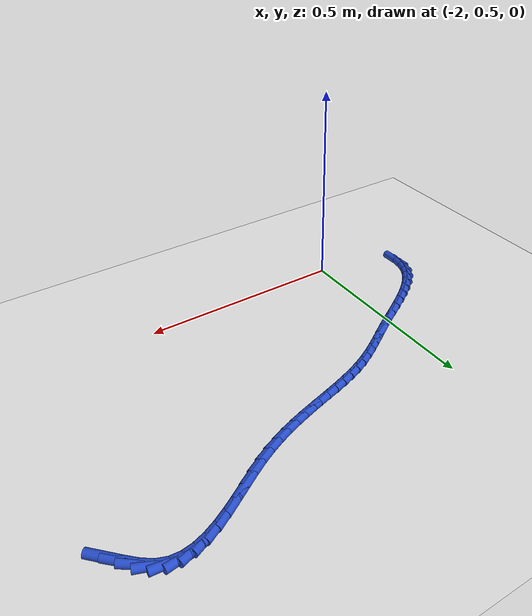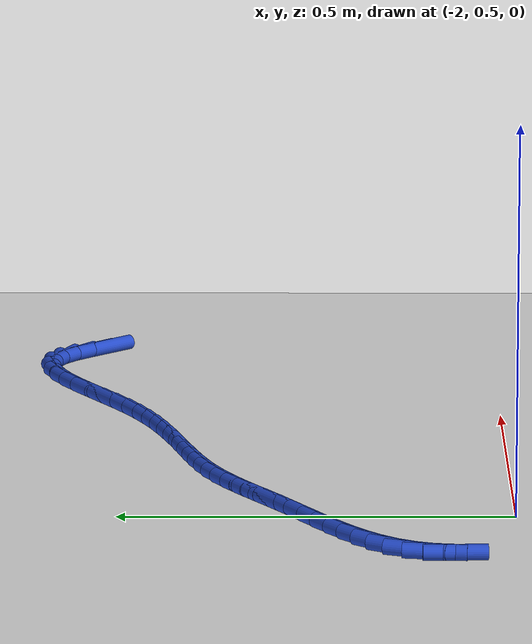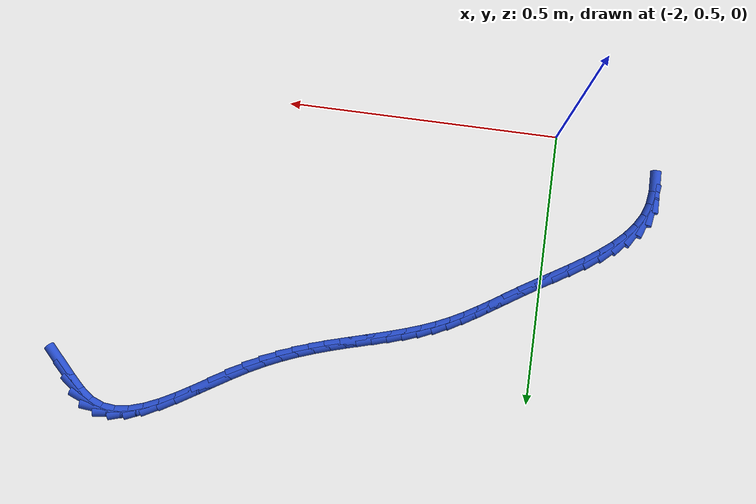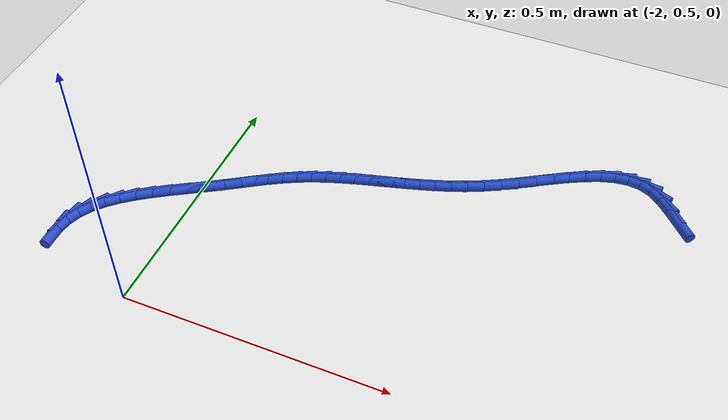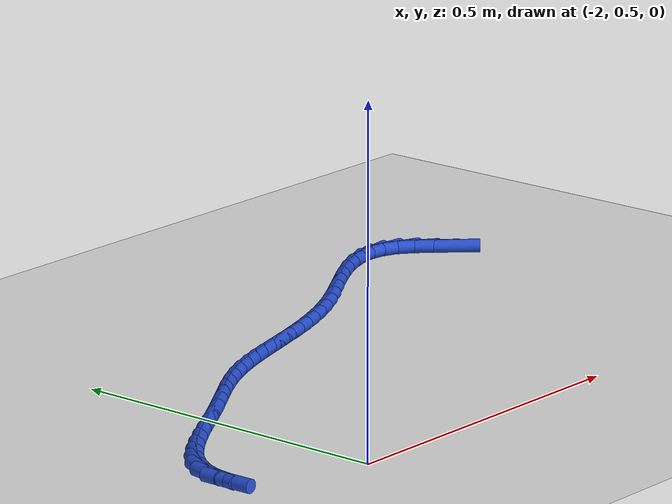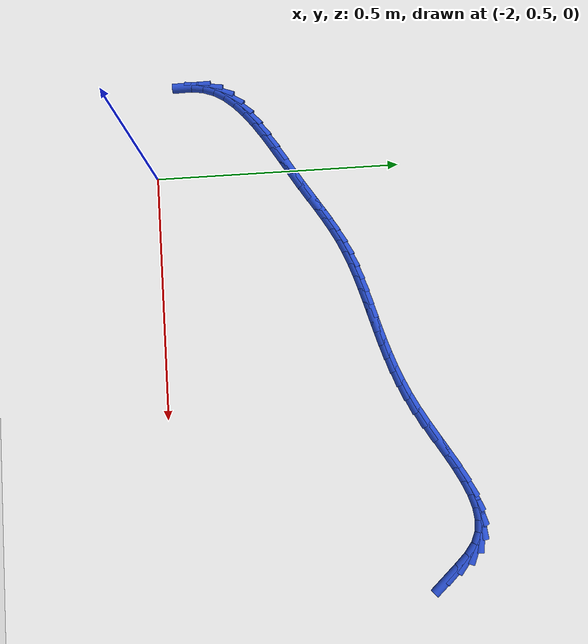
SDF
<sdf version="1.6">
 <world name="default">
  <model name="ground_plane">
   <static>1</static>
   <link name="link">
    <collision name="collision">
     <geometry><plane><normal>0 0 1</normal><size>100 100</size></plane></geometry>
     <surface><friction><ode><mu>100</mu><mu2>50</mu2></ode></friction></surface>
    </collision>
    <visual name="visual">
     <cast_shadows>0</cast_shadows>
     <geometry><plane><normal>0 0 1</normal><size>100 100</size></plane></geometry>
     <material>
      <script><uri>file://media/materials/scripts/gazebo.material</uri><name>Gazebo/WhiteGlow</name></script>
     </material>
    </visual>
   </link>
  </model>
  <model name="line">
   <link name="link_61">
    <pose>-1.1542749857297914 1.0375028646965918 0.01 0 1.57 -0.826155558056817</pose>
    <collision name="collision">
     <geometry><cylinder><radius>0.01</radius><length>0.08</length></cylinder></geometry>
    </collision>
    <visual name="visual">
     <material>
      <script><name>Gazebo/Blue</name><uri>file://media/materials/scripts/gazebo.material</uri></script>
     </material>
     <geometry><cylinder><radius>0.01</radius><length>0.08</length></cylinder></geometry>
    </visual>
   </link>
   <link name="link_62">
    <pose>-1.1750645763859224 1.0600601395720355 0.01 0 1.57 -0.7933945270055505</pose>
    <collision name="collision">
     <geometry><cylinder><radius>0.01</radius><length>0.08</length></cylinder></geometry>
    </collision>
    <visual name="visual">
     <material>
      <script><name>Gazebo/Blue</name><uri>file://media/materials/scripts/gazebo.material</uri></script>
     </material>
     <geometry><cylinder><radius>0.01</radius><length>0.08</length></cylinder></geometry>
    </visual>
   </link>
   <link name="link_63">
    <pose>-1.1957799340686757 1.0811094700052497 0.01 0 1.57 -0.6518290344011914</pose>
    <collision name="collision">
     <geometry><cylinder><radius>0.01</radius><length>0.08</length></cylinder></geometry>
    </collision>
    <visual name="visual">
     <material>
      <script><name>Gazebo/Blue</name><uri>file://media/materials/scripts/gazebo.material</uri></script>
     </material>
     <geometry><cylinder><radius>0.01</radius><length>0.08</length></cylinder></geometry>
    </visual>
   </link>
   <link name="link_64">
    <pose>-1.2172710076090587 1.0975091894607254 0.01 0 1.57 -0.384783047442654</pose>
    <collision name="collision">
     <geometry><cylinder><radius>0.01</radius><length>0.08</length></cylinder></geometry>
    </collision>
    <visual name="visual">
     <material>
      <script><name>Gazebo/Blue</name><uri>file://media/materials/scripts/gazebo.material</uri></script>
     </material>
     <geometry><cylinder><radius>0.01</radius><length>0.08</length></cylinder></geometry>
    </visual>
   </link>
   <link name="link_65">
    <pose>-1.2402166386882192 1.1068014694945498 0.01 0 1.57 -0.1009094022104587</pose>
    <collision name="collision">
     <geometry><cylinder><radius>0.01</radius><length>0.08</length></cylinder></geometry>
    </collision>
    <visual name="visual">
     <material>
      <script><name>Gazebo/Blue</name><uri>file://media/materials/scripts/gazebo.material</uri></script>
     </material>
     <geometry><cylinder><radius>0.01</radius><length>0.08</length></cylinder></geometry>
    </visual>
   </link>
   <link name="link_66">
    <pose>-1.264609368722216 1.1092713142324966 0.01 0 1.57 0.1309670021226246</pose>
    <collision name="collision">
     <geometry><cylinder><radius>0.01</radius><length>0.08</length></cylinder></geometry>
    </collision>
    <visual name="visual">
     <material>
      <script><name>Gazebo/Blue</name><uri>file://media/materials/scripts/gazebo.material</uri></script>
     </material>
     <geometry><cylinder><radius>0.01</radius><length>0.08</length></cylinder></geometry>
    </visual>
   </link>
   <link name="link_67">
    <pose>-1.2902696948655548 1.1058913111046536 0.01 0 1.57 0.2994201154492021</pose>
    <collision name="collision">
     <geometry><cylinder><radius>0.01</radius><length>0.08</length></cylinder></geometry>
    </collision>
    <visual name="visual">
     <material>
      <script><name>Gazebo/Blue</name><uri>file://media/materials/scripts/gazebo.material</uri></script>
     </material>
     <geometry><cylinder><radius>0.01</radius><length>0.08</length></cylinder></geometry>
    </visual>
   </link>
   <link name="link_68">
    <pose>-1.3170181142726092 1.0976340475416253 0.01 0 1.57 0.414290330152264</pose>
    <collision name="collision">
     <geometry><cylinder><radius>0.01</radius><length>0.08</length></cylinder></geometry>
    </collision>
    <visual name="visual">
     <material>
      <script><name>Gazebo/Blue</name><uri>file://media/materials/scripts/gazebo.material</uri></script>
     </material>
     <geometry><cylinder><radius>0.01</radius><length>0.08</length></cylinder></geometry>
    </visual>
   </link>
   <link name="link_69">
    <pose>-1.344675124097755 1.0854721109740177 0.01 0 1.57 0.48871598583481846</pose>
    <collision name="collision">
     <geometry><cylinder><radius>0.01</radius><length>0.08</length></cylinder></geometry>
    </collision>
    <visual name="visual">
     <material>
      <script><name>Gazebo/Blue</name><uri>file://media/materials/scripts/gazebo.material</uri></script>
     </material>
     <geometry><cylinder><radius>0.01</radius><length>0.08</length></cylinder></geometry>
    </visual>
   </link>
   <link name="link_70">
    <pose>-1.3730612214953668 1.0703780888324346 0.01 0 1.57 0.5325588930081392</pose>
    <collision name="collision">
     <geometry><cylinder><radius>0.01</radius><length>0.08</length></cylinder></geometry>
    </collision>
    <visual name="visual">
     <material>
      <script><name>Gazebo/Blue</name><uri>file://media/materials/scripts/gazebo.material</uri></script>
     </material>
     <geometry><cylinder><radius>0.01</radius><length>0.08</length></cylinder></geometry>
    </visual>
   </link>
   <link name="link_71">
    <pose>-1.401996903619819 1.0533245685474812 0.01 0 1.57 0.5518063078084224</pose>
    <collision name="collision">
     <geometry><cylinder><radius>0.01</radius><length>0.08</length></cylinder></geometry>
    </collision>
    <visual name="visual">
     <material>
      <script><name>Gazebo/Blue</name><uri>file://media/materials/scripts/gazebo.material</uri></script>
     </material>
     <geometry><cylinder><radius>0.01</radius><length>0.08</length></cylinder></geometry>
    </visual>
   </link>
   <link name="link_72">
    <pose>-1.4313026676254874 1.0352841375497632 0.01 0 1.57 0.549270138854012</pose>
    <collision name="collision">
     <geometry><cylinder><radius>0.01</radius><length>0.08</length></cylinder></geometry>
    </collision>
    <visual name="visual">
     <material>
      <script><name>Gazebo/Blue</name><uri>file://media/materials/scripts/gazebo.material</uri></script>
     </material>
     <geometry><cylinder><radius>0.01</radius><length>0.08</length></cylinder></geometry>
    </visual>
   </link>
   <link name="link_73">
    <pose>-1.4607990106667466 1.017229383269885 0.01 0 1.57 0.5251319545697665</pose>
    <collision name="collision">
     <geometry><cylinder><radius>0.01</radius><length>0.08</length></cylinder></geometry>
    </collision>
    <visual name="visual">
     <material>
      <script><name>Gazebo/Blue</name><uri>file://media/materials/scripts/gazebo.material</uri></script>
     </material>
     <geometry><cylinder><radius>0.01</radius><length>0.08</length></cylinder></geometry>
    </visual>
   </link>
   <link name="link_74">
    <pose>-1.4903064298979716 1.0001328931384517 0.01 0 1.57 0.4790051412825717</pose>
    <collision name="collision">
     <geometry><cylinder><radius>0.01</radius><length>0.08</length></cylinder></geometry>
    </collision>
    <visual name="visual">
     <material>
      <script><name>Gazebo/Blue</name><uri>file://media/materials/scripts/gazebo.material</uri></script>
     </material>
     <geometry><cylinder><radius>0.01</radius><length>0.08</length></cylinder></geometry>
    </visual>
   </link>
   <link name="link_75">
    <pose>-1.519654742285898 0.9848909352190839 0.01 0 1.57 0.4271644738788694</pose>
    <collision name="collision">
     <geometry><cylinder><radius>0.01</radius><length>0.08</length></cylinder></geometry>
    </collision>
    <visual name="visual">
     <material>
      <script><name>Gazebo/Blue</name><uri>file://media/materials/scripts/gazebo.material</uri></script>
     </material>
     <geometry><cylinder><radius>0.01</radius><length>0.08</length></cylinder></geometry>
    </visual>
   </link>
   <link name="link_76">
    <pose>-1.5487666194202543 0.9716393968107695 0.01 0 1.57 0.3811349308430321</pose>
    <collision name="collision">
     <geometry><cylinder><radius>0.01</radius><length>0.08</length></cylinder></geometry>
    </collision>
    <visual name="visual">
     <material>
      <script><name>Gazebo/Blue</name><uri>file://media/materials/scripts/gazebo.material</uri></script>
     </material>
     <geometry><cylinder><radius>0.01</radius><length>0.08</length></cylinder></geometry>
    </visual>
   </link>
   <link name="link_77">
    <pose>-1.5776180206786379 0.960077794813522 0.01 0 1.57 0.3422366706057446</pose>
    <collision name="collision">
     <geometry><cylinder><radius>0.01</radius><length>0.08</length></cylinder></geometry>
    </collision>
    <visual name="visual">
     <material>
      <script><name>Gazebo/Blue</name><uri>file://media/materials/scripts/gazebo.material</uri></script>
     </material>
     <geometry><cylinder><radius>0.01</radius><length>0.08</length></cylinder></geometry>
    </visual>
   </link>
   <link name="link_78">
    <pose>-1.6061855385334223 0.9499004617533731 0.01 0 1.57 0.3114820809907761</pose>
    <collision name="collision">
     <geometry><cylinder><radius>0.01</radius><length>0.08</length></cylinder></geometry>
    </collision>
    <visual name="visual">
     <material>
      <script><name>Gazebo/Blue</name><uri>file://media/materials/scripts/gazebo.material</uri></script>
     </material>
     <geometry><cylinder><radius>0.01</radius><length>0.08</length></cylinder></geometry>
    </visual>
   </link>
   <link name="link_79">
    <pose>-1.6344457654569824 0.9408017301563554 0.01 0 1.57 0.28971293504846174</pose>
    <collision name="collision">
     <geometry><cylinder><radius>0.01</radius><length>0.08</length></cylinder></geometry>
    </collision>
    <visual name="visual">
     <material>
      <script><name>Gazebo/Blue</name><uri>file://media/materials/scripts/gazebo.material</uri></script>
     </material>
     <geometry><cylinder><radius>0.01</radius><length>0.08</length></cylinder></geometry>
    </visual>
   </link>
   <link name="link_80">
    <pose>-1.6623752939216925 0.932475932548501 0.01 0 1.57 0.2776235840182263</pose>
    <collision name="collision">
     <geometry><cylinder><radius>0.01</radius><length>0.08</length></cylinder></geometry>
    </collision>
    <visual name="visual">
     <material>
      <script><name>Gazebo/Blue</name><uri>file://media/materials/scripts/gazebo.material</uri></script>
     </material>
     <geometry><cylinder><radius>0.01</radius><length>0.08</length></cylinder></geometry>
    </visual>
   </link>
   <link name="link_81">
    <pose>-1.689950716399925 0.924617401455841 0.01 0 1.57 0.2757858363685409</pose>
    <collision name="collision">
     <geometry><cylinder><radius>0.01</radius><length>0.08</length></cylinder></geometry>
    </collision>
    <visual name="visual">
     <material>
      <script><name>Gazebo/Blue</name><uri>file://media/materials/scripts/gazebo.material</uri></script>
     </material>
     <geometry><cylinder><radius>0.01</radius><length>0.08</length></cylinder></geometry>
    </visual>
   </link>
   <link name="link_82">
    <pose>-1.7171486253640569 0.9169204694044093 0.01 0 1.57 0.28466099066515427</pose>
    <collision name="collision">
     <geometry><cylinder><radius>0.01</radius><length>0.08</length></cylinder></geometry>
    </collision>
    <visual name="visual">
     <material>
      <script><name>Gazebo/Blue</name><uri>file://media/materials/scripts/gazebo.material</uri></script>
     </material>
     <geometry><cylinder><radius>0.01</radius><length>0.08</length></cylinder></geometry>
    </visual>
   </link>
   <link name="link_83">
    <pose>-1.7439456132864601 0.9090794689202366 0.01 0 1.57 0.3045863295543438</pose>
    <collision name="collision">
     <geometry><cylinder><radius>0.01</radius><length>0.08</length></cylinder></geometry>
    </collision>
    <visual name="visual">
     <material>
      <script><name>Gazebo/Blue</name><uri>file://media/materials/scripts/gazebo.material</uri></script>
     </material>
     <geometry><cylinder><radius>0.01</radius><length>0.08</length></cylinder></geometry>
    </visual>
   </link>
   <link name="link_84">
    <pose>-1.77031827263951 0.9007887325293558 0.01 0 1.57 0.33572664670906766</pose>
    <collision name="collision">
     <geometry><cylinder><radius>0.01</radius><length>0.08</length></cylinder></geometry>
    </collision>
    <visual name="visual">
     <material>
      <script><name>Gazebo/Blue</name><uri>file://media/materials/scripts/gazebo.material</uri></script>
     </material>
     <geometry><cylinder><radius>0.01</radius><length>0.08</length></cylinder></geometry>
    </visual>
   </link>
   <link name="link_85">
    <pose>-1.79624319589558 0.8917425927577985 0.01 0 1.57 0.3779874119327694</pose>
    <collision name="collision">
     <geometry><cylinder><radius>0.01</radius><length>0.08</length></cylinder></geometry>
    </collision>
    <visual name="visual">
     <material>
      <script><name>Gazebo/Blue</name><uri>file://media/materials/scripts/gazebo.material</uri></script>
     </material>
     <geometry><cylinder><radius>0.01</radius><length>0.08</length></cylinder></geometry>
    </visual>
   </link>
   <link name="link_86">
    <pose>-1.821696975527045 0.8816353821315972 0.01 0 1.57 0.43088917504239604</pose>
    <collision name="collision">
     <geometry><cylinder><radius>0.01</radius><length>0.08</length></cylinder></geometry>
    </collision>
    <visual name="visual">
     <material>
      <script><name>Gazebo/Blue</name><uri>file://media/materials/scripts/gazebo.material</uri></script>
     </material>
     <geometry><cylinder><radius>0.01</radius><length>0.08</length></cylinder></geometry>
    </visual>
   </link>
   <link name="link_87">
    <pose>-1.8466563093227837 0.8701616347673549 0.01 0 1.57 0.48766267648569245</pose>
    <collision name="collision">
     <geometry><cylinder><radius>0.01</radius><length>0.08</length></cylinder></geometry>
    </collision>
    <visual name="visual">
     <material>
      <script><name>Gazebo/Blue</name><uri>file://media/materials/scripts/gazebo.material</uri></script>
     </material>
     <geometry><cylinder><radius>0.01</radius><length>0.08</length></cylinder></geometry>
    </visual>
   </link>
   <link name="link_88">
    <pose>-1.8711724237445515 0.8571585431206735 0.01 0 1.57 0.5314498606835333</pose>
    <collision name="collision">
     <geometry><cylinder><radius>0.01</radius><length>0.08</length></cylinder></geometry>
    </collision>
    <visual name="visual">
     <material>
      <script><name>Gazebo/Blue</name><uri>file://media/materials/scripts/gazebo.material</uri></script>
     </material>
     <geometry><cylinder><radius>0.01</radius><length>0.08</length></cylinder></geometry>
    </visual>
   </link>
   <link name="link_89">
    <pose>-1.8955017750257983 0.842856138231472 0.01 0 1.57 0.559580495318021</pose>
    <collision name="collision">
     <geometry><cylinder><radius>0.01</radius><length>0.08</length></cylinder></geometry>
    </collision>
    <visual name="visual">
     <material>
      <script><name>Gazebo/Blue</name><uri>file://media/materials/scripts/gazebo.material</uri></script>
     </material>
     <geometry><cylinder><radius>0.01</radius><length>0.08</length></cylinder></geometry>
    </visual>
   </link>
   <link name="link_90">
    <pose>-1.9199358409953335 0.827551487388006 0.01 0 1.57 0.5726904796237602</pose>
    <collision name="collision">
     <geometry><cylinder><radius>0.01</radius><length>0.08</length></cylinder></geometry>
    </collision>
    <visual name="visual">
     <material>
      <script><name>Gazebo/Blue</name><uri>file://media/materials/scripts/gazebo.material</uri></script>
     </material>
     <geometry><cylinder><radius>0.01</radius><length>0.08</length></cylinder></geometry>
    </visual>
   </link>
   <link name="link_91">
    <pose>-1.9447660994819662 0.8115416578785309 0.01 0 1.57 0.5717133377183888</pose>
    <collision name="collision">
     <geometry><cylinder><radius>0.01</radius><length>0.08</length></cylinder></geometry>
    </collision>
    <visual name="visual">
     <material>
      <script><name>Gazebo/Blue</name><uri>file://media/materials/scripts/gazebo.material</uri></script>
     </material>
     <geometry><cylinder><radius>0.01</radius><length>0.08</length></cylinder></geometry>
    </visual>
   </link>
   <link name="link_92">
    <pose>-1.9702840283145078 0.7951237169913037 0.01 0 1.57 0.5581137839787977</pose>
    <collision name="collision">
     <geometry><cylinder><radius>0.01</radius><length>0.08</length></cylinder></geometry>
    </collision>
    <visual name="visual">
     <material>
      <script><name>Gazebo/Blue</name><uri>file://media/materials/scripts/gazebo.material</uri></script>
     </material>
     <geometry><cylinder><radius>0.01</radius><length>0.08</length></cylinder></geometry>
    </visual>
   </link>
   <link name="link_93">
    <pose>-1.9967685890983662 0.778588743242971 0.01 0 1.57 0.5455108097210468</pose>
    <collision name="collision">
     <geometry><cylinder><radius>0.01</radius><length>0.08</length></cylinder></geometry>
    </collision>
    <visual name="visual">
     <material>
      <script><name>Gazebo/Blue</name><uri>file://media/materials/scripts/gazebo.material</uri></script>
     </material>
     <geometry><cylinder><radius>0.01</radius><length>0.08</length></cylinder></geometry>
    </visual>
   </link>
   <link name="link_94">
    <pose>-2.0240659520287942 0.7620207328038051 0.01 0 1.57 0.5489027302673656</pose>
    <collision name="collision">
     <geometry><cylinder><radius>0.01</radius><length>0.08</length></cylinder></geometry>
    </collision>
    <visual name="visual">
     <material>
      <script><name>Gazebo/Blue</name><uri>file://media/materials/scripts/gazebo.material</uri></script>
     </material>
     <geometry><cylinder><radius>0.01</radius><length>0.08</length></cylinder></geometry>
    </visual>
   </link>
   <link name="link_95">
    <pose>-2.051489347307515 0.7452486803312309 0.01 0 1.57 0.5690938430391009</pose>
    <collision name="collision">
     <geometry><cylinder><radius>0.01</radius><length>0.08</length></cylinder></geometry>
    </collision>
    <visual name="visual">
     <material>
      <script><name>Gazebo/Blue</name><uri>file://media/materials/scripts/gazebo.material</uri></script>
     </material>
     <geometry><cylinder><radius>0.01</radius><length>0.08</length></cylinder></geometry>
    </visual>
   </link>
   <link name="link_96">
    <pose>-2.0783191867549515 0.728085877519897 0.01 0 1.57 0.6075250859256283</pose>
    <collision name="collision">
     <geometry><cylinder><radius>0.01</radius><length>0.08</length></cylinder></geometry>
    </collision>
    <visual name="visual">
     <material>
      <script><name>Gazebo/Blue</name><uri>file://media/materials/scripts/gazebo.material</uri></script>
     </material>
     <geometry><cylinder><radius>0.01</radius><length>0.08</length></cylinder></geometry>
    </visual>
   </link>
   <link name="link_97">
    <pose>-2.1038358821915297 0.7103456160644517 0.01 0 1.57 0.6673563647921416</pose>
    <collision name="collision">
     <geometry><cylinder><radius>0.01</radius><length>0.08</length></cylinder></geometry>
    </collision>
    <visual name="visual">
     <material>
      <script><name>Gazebo/Blue</name><uri>file://media/materials/scripts/gazebo.material</uri></script>
     </material>
     <geometry><cylinder><radius>0.01</radius><length>0.08</length></cylinder></geometry>
    </visual>
   </link>
   <link name="link_98">
    <pose>-2.127319845437674 0.691841187659544 0.01 0 1.57 0.7536487910772218</pose>
    <collision name="collision">
     <geometry><cylinder><radius>0.01</radius><length>0.08</length></cylinder></geometry>
    </collision>
    <visual name="visual">
     <material>
      <script><name>Gazebo/Blue</name><uri>file://media/materials/scripts/gazebo.material</uri></script>
     </material>
     <geometry><cylinder><radius>0.01</radius><length>0.08</length></cylinder></geometry>
    </visual>
   </link>
   <link name="link_99">
    <pose>-2.148051488313808 0.6723858839998226 0.01 0 1.57 0.8732276893597346</pose>
    <collision name="collision">
     <geometry><cylinder><radius>0.01</radius><length>0.08</length></cylinder></geometry>
    </collision>
    <visual name="visual">
     <material>
      <script><name>Gazebo/Blue</name><uri>file://media/materials/scripts/gazebo.material</uri></script>
     </material>
     <geometry><cylinder><radius>0.01</radius><length>0.08</length></cylinder></geometry>
    </visual>
   </link>
   <link name="link_100">
    <pose>-2.165311222640357 0.6517929967799359 0.01 0 1.57 1.0331347171856156</pose>
    <collision name="collision">
     <geometry><cylinder><radius>0.01</radius><length>0.08</length></cylinder></geometry>
    </collision>
    <visual name="visual">
     <material>
      <script><name>Gazebo/Blue</name><uri>file://media/materials/scripts/gazebo.material</uri></script>
     </material>
     <geometry><cylinder><radius>0.01</radius><length>0.08</length></cylinder></geometry>
    </visual>
   </link>
   <link name="link_101">
    <pose>-2.1783794602377458 0.6298758176945327 0.01 0 1.57 1.2335352507810513</pose>
    <collision name="collision">
     <geometry><cylinder><radius>0.01</radius><length>0.08</length></cylinder></geometry>
    </collision>
    <visual name="visual">
     <material>
      <script><name>Gazebo/Blue</name><uri>file://media/materials/scripts/gazebo.material</uri></script>
     </material>
     <geometry><cylinder><radius>0.01</radius><length>0.08</length></cylinder></geometry>
    </visual>
   </link>
   <link name="link_102">
    <pose>-2.186590192387398 0.6064606174861292 0.01 0 1.57 1.4320039964418882</pose>
    <collision name="collision">
     <geometry><cylinder><radius>0.01</radius><length>0.08</length></cylinder></geometry>
    </collision>
    <visual name="visual">
     <material>
      <script><name>Gazebo/Blue</name><uri>file://media/materials/scripts/gazebo.material</uri></script>
     </material>
     <geometry><cylinder><radius>0.01</radius><length>0.08</length></cylinder></geometry>
    </visual>
   </link>
   <link name="link_103">
    <pose>-2.190067852454157 0.5815651429861335 0.01 0 1.57 -1.550647759376603</pose>
    <collision name="collision">
     <geometry><cylinder><radius>0.01</radius><length>0.08</length></cylinder></geometry>
    </collision>
    <visual name="visual">
     <material>
      <script><name>Gazebo/Blue</name><uri>file://media/materials/scripts/gazebo.material</uri></script>
     </material>
     <geometry><cylinder><radius>0.01</radius><length>0.08</length></cylinder></geometry>
    </visual>
   </link>
  </model>
 </world>
</sdf>
